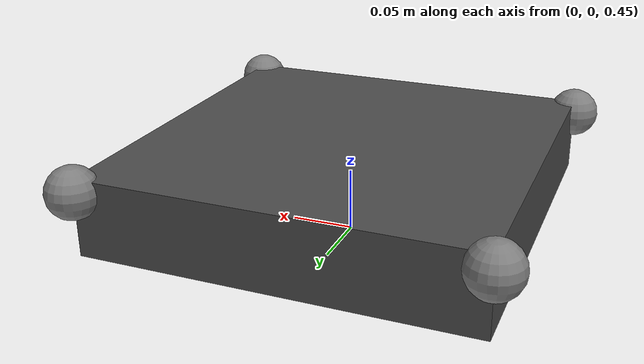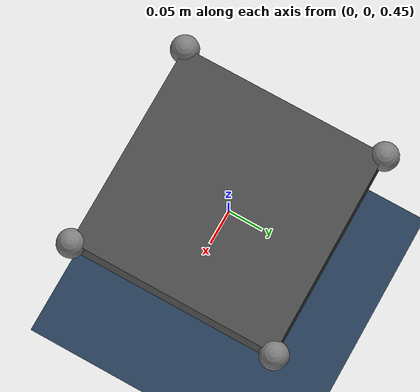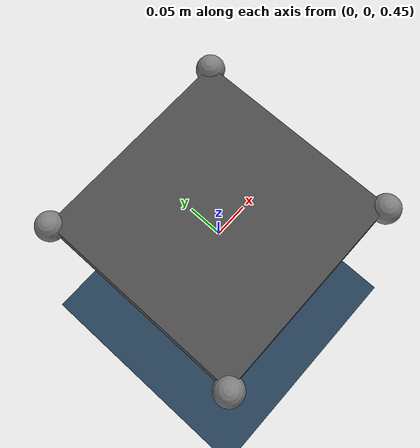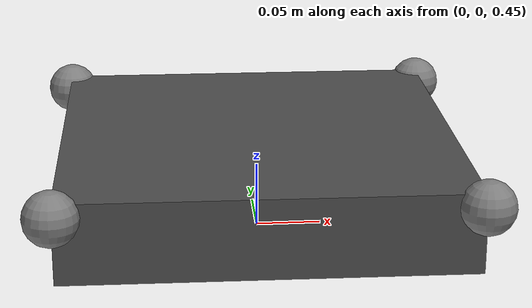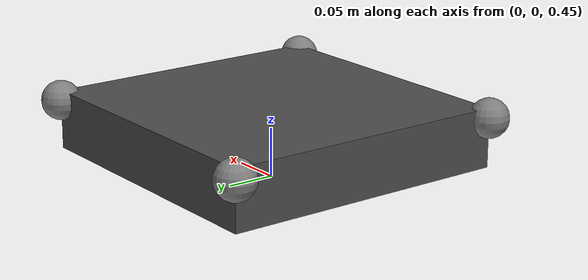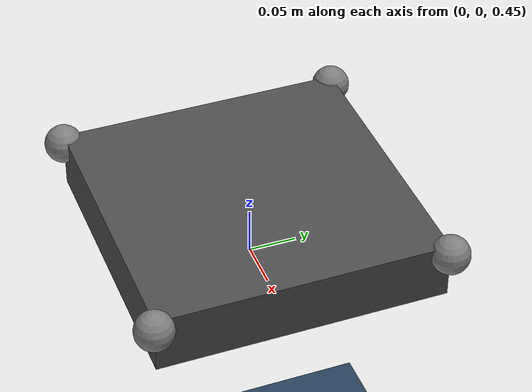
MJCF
<!-- Generic Quadrotor Model -->
<!-- Simplified model for faster training -->

<mujoco model="quadrotor_generic">
  <compiler angle="radian" coordinate="local" inertiafromgeom="false"/>

  <option timestep="0.002" gravity="0 0 -9.81" integrator="RK4"/>

  <default>
    <geom contype="1" conaffinity="1" friction="0.8 0.02 0.01"/>
    <motor ctrllimited="true" ctrlrange="0 1"/>
  </default>

  <asset>
    <texture type="2d" name="grid" builtin="checker" rgb1="0.1 0.2 0.3" rgb2="0.2 0.3 0.4"
             width="512" height="512"/>
    <material name="grid" texture="grid" texrepeat="8 8"/>
    <material name="drone" rgba="0.3 0.3 0.3 1"/>
  </asset>

  <worldbody>
    <geom name="ground" type="plane" size="50 50 0.1" material="grid"/>
    <light directional="true" diffuse="0.8 0.8 0.8" pos="0 0 5"/>

    <body name="quadrotor" pos="0 0 0.5">
      <freejoint name="root"/>
      <inertial pos="0 0 0" mass="1.5" diaginertia="0.02 0.02 0.04"/>

      <!-- Simplified body geometry -->
      <geom name="body" type="box" size="0.15 0.15 0.03" material="drone"/>

      <!-- Thrust sites at motor positions -->
      <site name="thrust1" pos="0.15 0.15 0.02" size="0.02"/>
      <site name="thrust2" pos="-0.15 0.15 0.02" size="0.02"/>
      <site name="thrust3" pos="-0.15 -0.15 0.02" size="0.02"/>
      <site name="thrust4" pos="0.15 -0.15 0.02" size="0.02"/>

      <site name="imu" pos="0 0 0" size="0.01"/>
    </body>
  </worldbody>

  <sensor>
    <gyro name="gyro" site="imu"/>
    <accelerometer name="accel" site="imu"/>
    <framepos name="pos" objtype="site" objname="imu"/>
    <framequat name="quat" objtype="site" objname="imu"/>
    <framelinvel name="linvel" objtype="site" objname="imu"/>
    <frameangvel name="angvel" objtype="site" objname="imu"/>
  </sensor>

  <actuator>
    <general name="motor1" site="thrust1" gear="0 0 6 0 0 0.06" ctrlrange="0 1"/>
    <general name="motor2" site="thrust2" gear="0 0 6 0 0 -0.06" ctrlrange="0 1"/>
    <general name="motor3" site="thrust3" gear="0 0 6 0 0 0.06" ctrlrange="0 1"/>
    <general name="motor4" site="thrust4" gear="0 0 6 0 0 -0.06" ctrlrange="0 1"/>
  </actuator>
</mujoco>
